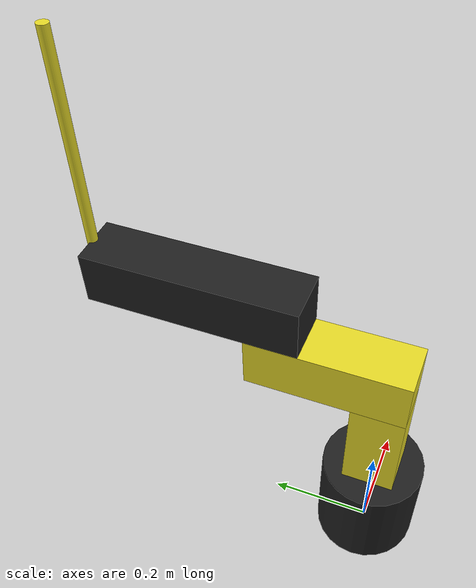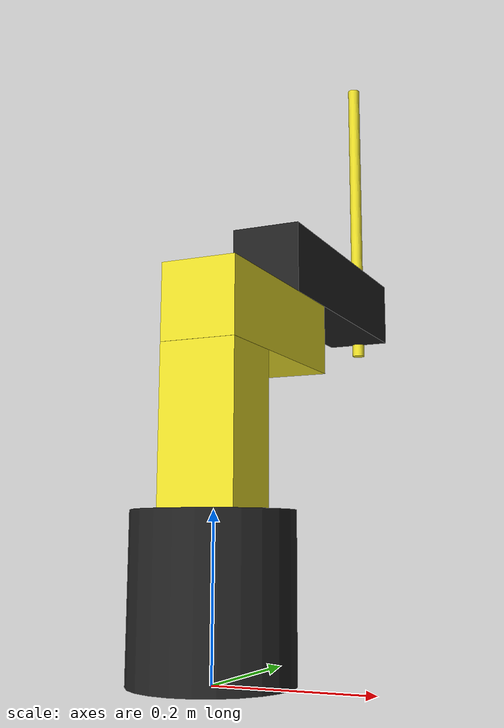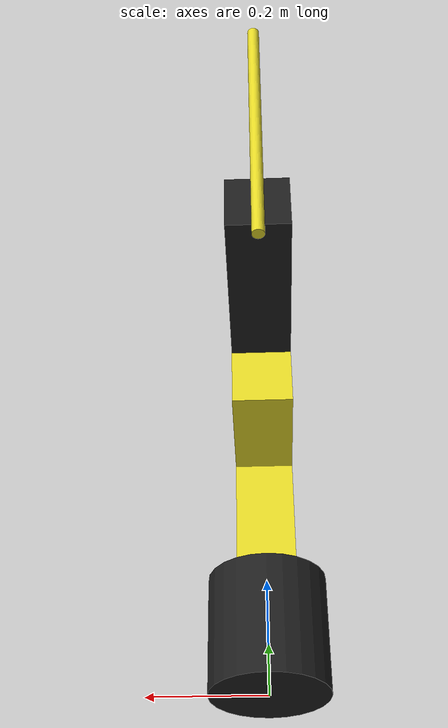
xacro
<?xml version="1.0"?>
<!-- Scara Robot -->
<robot name="scara_robot" xmlns:xacro="http://www.ros.org/wiki/xacro">
    <xacro:include filename="$(find scara_robot_description)/urdf/materials.xacro" />
    <xacro:include filename="$(find scara_robot_description)/urdf/scara_robot.gazebo" />

    <link name="world"/>

    <joint name="joint0" type="fixed">
    <parent link="world"/>
    <child link="base_link"/>
    </joint>

    <link name="base_link">
        <visual>
             <origin xyz="0 0 0.1" rpy="0 0 0" />
             <geometry>
                <cylinder radius="0.1" length="0.2" />
             </geometry>
        </visual>

        <collision>
             <origin xyz="0 0 0.1" rpy="0 0 0"/>
             <geometry>
               <cylinder radius="0.1" length="0.2"/>
             </geometry>
        </collision>

        <inertial>
             <origin xyz="0 0 0.1" rpy="0 0 0"/>
             <mass value="20"/>
             <inertia ixx="100"  ixy="0"  ixz="0" iyy="100" iyz="0" izz="100" />
        </inertial>
    </link>

    <joint name="joint1" type="continuous">
        <origin xyz="0 0 0.2" rpy="0 0 0"/>
        <parent link="base_link"/>
        <child link="link1"/>
        <axis xyz="0 0 1 "/>
        <dynamics damping="0.7"/>
    </joint>

    <link name="link1">
        <visual>
             <origin xyz="0 0 0.1" rpy="0 0 0" />
             <geometry>
                <box size="0.1 0.1 0.2"/>
             </geometry>
         </visual>

        <collision>
             <origin xyz="0 0 0.1" rpy="0 0 0" />
             <geometry>
                <box size="0.1 0.1 0.2"/>
             </geometry>
        </collision>

        <inertial>
                <origin xyz="0 0 0.1" rpy="0 0 0"/>
             <mass value="10"/>
             <inertia ixx="100"  ixy="0"  ixz="0" iyy="100" iyz="0" izz="100" />
        </inertial>

    </link>

    <joint name="joint3" type="fixed">
        <parent link="link1"/>
        <child link="link2"/>
        <origin xyz="0 0 0.15" rpy="0 0 0"/>
        <axis xyz="0 0 1"/>
        <dynamics damping="0.7"/>
    </joint>

    <link name="link2">

        <visual>
             <origin xyz="0 0.1 0.1" rpy="1.57 0 0" />
             <geometry>
                <box size="0.1 0.1 0.3"/>
             </geometry>

        </visual>

        <collision>
             <origin xyz="0 0.1 0.1" rpy="1.57 0 0" />
             <geometry>
                <box size="0.1 0.1 0.3"/>
             </geometry>
        </collision>

        <inertial>
             <origin xyz="0 0.1 0.1" rpy="1.57 0 0" />
             <mass value="0.5"/>
             <inertia ixx="10"  ixy="0"  ixz="0" iyy="10" iyz="0" izz="10" />
        </inertial>

    </link>

    <joint name="joint2" type="continuous">
        <parent link="link2"/>
        <child link="link3"/>
        <origin xyz="0 0.2 0.15" rpy="0 0 0"/>
        <axis xyz="0 0 1"/>
        <dynamics damping="0.7"/>
    </joint>

    <link name="link3">
        <visual>
             <origin xyz="0 0.15 0.05" rpy="0 0 0" />
             <geometry>
                <box size="0.1 0.4 0.1"/>
             </geometry>
        </visual>

        <collision>
             <origin xyz="0 0.15 0.05" rpy="0 0 0" />
             <geometry>
                <box size="0.1 0.4 0.1"/>
             </geometry>
        </collision>

        <inertial>
             <origin xyz="0 0.15 0.05" rpy="0 0 0" />
             <mass value="0.5"/>
             <inertia ixx="10"  ixy="0"  ixz="0" iyy="10" iyz="0" izz="10" />
        </inertial>

    </link>

    <joint name="joint4" type="prismatic">
        <parent link="link3"/>
        <child link="link4"/>
        <origin xyz="0 0.35 -0.02" rpy="0 0 0"/>
        <axis xyz="0 0 -1"/>
        <dynamics damping="0.7"/>
        <limit
            lower="0.0"
            upper="0.5"
            effort="10"
            velocity="10"   />
    </joint>

    <link name="link4">
        <visual>
             <origin xyz="0 0 0.25" rpy="0 0 0" />
             <geometry>
                <cylinder radius="0.01" length="0.5" />
             </geometry>
        </visual>

        <collision>
             <origin xyz="0 0 0.25" rpy="0 0 0" />
             <geometry>
                <cylinder radius="0.01" length="0.6" />
             </geometry>
        </collision>

        <inertial>
             <origin xyz="0 0 -0.01" rpy="0 0 0"/>
             <mass value="0.5"/>
             <inertia ixx="1"  ixy="0"  ixz="0" iyy="1" iyz="0" izz="1" />
        </inertial>
    </link>

    <transmission name="tran1">
    <type>transmission_interface/SimpleTransmission</type>
    <joint name="joint1">
      <hardwareInterface>hardware_interface/EffortJointInterface</hardwareInterface>
    </joint>
    <actuator name="motor1">
      <hardwareInterface>hardware_interface/EffortJointInterface</hardwareInterface>
      <mechanicalReduction>1</mechanicalReduction>
    </actuator>
  </transmission>

<transmission name="tran2">
    <type>transmission_interface/SimpleTransmission</type>
    <joint name="joint2">
      <hardwareInterface>hardware_interface/EffortJointInterface</hardwareInterface>
    </joint>
    <actuator name="motor2">
      <hardwareInterface>hardware_interface/EffortJointInterface</hardwareInterface>
      <mechanicalReduction>1</mechanicalReduction>
    </actuator>
  </transmission>

  <transmission name="tran3">
    <type>transmission_interface/SimpleTransmission</type>
    <joint name="joint4">
      <hardwareInterface>hardware_interface/EffortJointInterface</hardwareInterface>
    </joint>
    <actuator name="motor4">
      <hardwareInterface>hardware_interface/EffortJointInterface</hardwareInterface>
      <mechanicalReduction>1</mechanicalReduction>
    </actuator>
  </transmission>

</robot>
